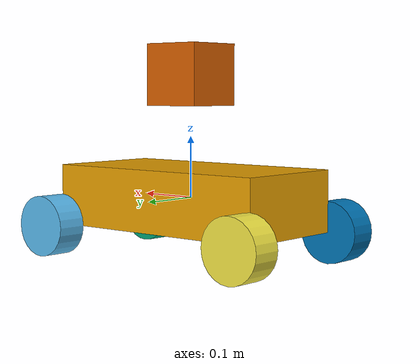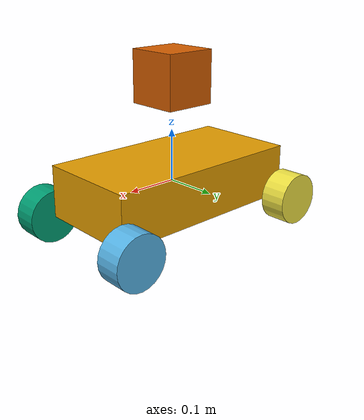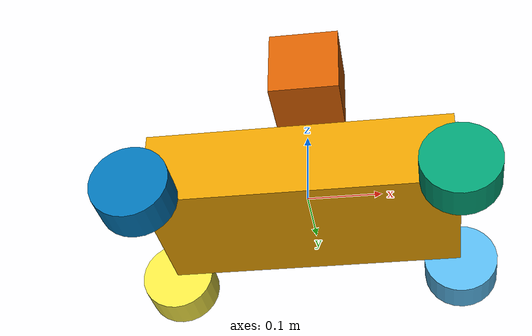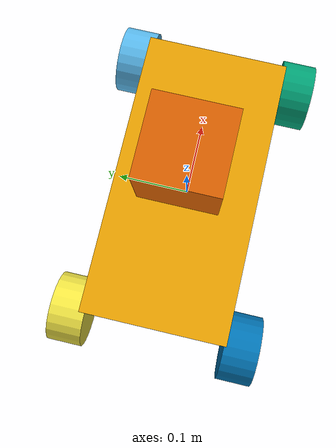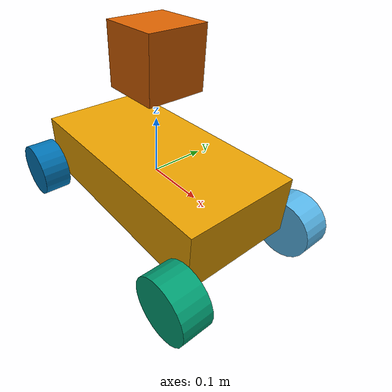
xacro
<?xml version="1.0"?>
<robot name="OMNIFEATTER" xmlns:xacro="http://ros.org/wiki/xacro">

  <!-- ****************** ROBOT CONSTANTS *********************  -->

  <!-- Define the size of the robot's main chassis in meters -->
  <xacro:property name="BASE_LENGHT" value="0.4" />
  <xacro:property name="BASE_HEIGHT" value="0.1" />
  <xacro:property name="BASE_WIDTH" value="0.2" />

  <!-- Size of mechanum wheels in meters-->
  <xacro:property name="MECANUM_WHEEL_DIAMETER" value="0.10" />
  <xacro:property name="MECANUM_WHEEL_WIDTH" value="0.05" />

  <!-- Limits of Mecanum Wheel joints-->
  <xacro:property name="MECANUM_WHEEL_MAX_JOINT_VEL" value="5.0" /> <!-- rad/s-->
  <xacro:property name="MECANUM_WHEEL_MAX_EFFORT" value="30" />

  <!-- Mecanum Wheel mass -->
  <xacro:property name="MECANUM_WHEEL_MASS" value="0.4" /> <!-- kg-->

  <!-- Robot mass -->
  <xacro:property name="ROBOT_MASS" value="2" /> <!-- kg-->

  <!-- ********** ROBOT CONSTANTS (NO NEED TO CHANGE) **********  -->

  <!-- Placement of Mecanum Wheel wheels-->
  <xacro:property name="BACK_WHEEL" value="-1" />
  <xacro:property name="FRONT_WHEEL" value="1" />
  <xacro:property name="LEFT_WHEEL" value="1" />
  <xacro:property name="RIGHT_WHEEL" value="-1" />

  <!-- ****************** MACROS ******************************  -->

  <!-- *********************** BASE LINK **********************  -->

  <xacro:include filename="$(find omni_featter_description)/urdf/base.urdf.xacro" />

  <!-- ******************** MECANUM WHEELS ********************  -->

  <xacro:include filename="$(find omni_featter_description)/urdf/wheels_urdf/mecanum_wheels_macro.urdf.xacro" />

  <!-- ******************* IMU LINK *******************  -->

  <xacro:include filename="$(find omni_featter_description)/urdf/sensors/imu_.urdf.xacro" />

  <!-- ****************** ASSEMBLY ****************************  -->

  <!-- ********************** BASE LINK ***********************  -->

  <xacro:Base_link
  ROBOT_MASS="${ROBOT_MASS}"
  MECANUM_WHEEL_MASS="${MECANUM_WHEEL_MASS}"
  BASE_LENGHT="${BASE_LENGHT}"
  BASE_WIDTH="${BASE_WIDTH}"
  BASE_HEIGHT="${BASE_HEIGHT}"/>

  <!-- ****************** LEFT FRONT WHEEL *******************************  -->

  <xacro:Mecanum_Wheel
  PREFIX="L_F_WHEEL"
  WIDTH="${MECANUM_WHEEL_WIDTH}"
  DIAMETER="${MECANUM_WHEEL_DIAMETER}"
  MECANUM_WHEEL_MAX_JOINT_VEL="${MECANUM_WHEEL_MAX_JOINT_VEL}"
  MECANUM_WHEEL_MAX_EFFORT="${MECANUM_WHEEL_MAX_EFFORT}"
  FR_BA="${FRONT_WHEEL}"
  LE_RI="${LEFT_WHEEL}"
  BASE_LENGHT="${BASE_LENGHT}"
  BASE_WIDTH="${BASE_WIDTH}"
  BASE_HEIGHT="${BASE_HEIGHT}"
  MECANUM_WHEEL_WIDTH="${MECANUM_WHEEL_WIDTH}"
  BASE_LINK="BASE_LINK"
  WHEEL_MASS="${MECANUM_WHEEL_MASS}"/>

  <!-- ****************** RIGHT FRONT WHEEL *******************************  -->

  <xacro:Mecanum_Wheel
  PREFIX="R_F_WHEEL"
  WIDTH="${MECANUM_WHEEL_WIDTH}"
  DIAMETER="${MECANUM_WHEEL_DIAMETER}"
  MECANUM_WHEEL_MAX_JOINT_VEL="${MECANUM_WHEEL_MAX_JOINT_VEL}"
  MECANUM_WHEEL_MAX_EFFORT="${MECANUM_WHEEL_MAX_EFFORT}"
  FR_BA="${FRONT_WHEEL}" LE_RI="${RIGHT_WHEEL}"
  BASE_LENGHT="${BASE_LENGHT}"
  BASE_WIDTH="${BASE_WIDTH}"
  BASE_HEIGHT="${BASE_HEIGHT}"
  MECANUM_WHEEL_WIDTH="${MECANUM_WHEEL_WIDTH}"
  BASE_LINK="BASE_LINK"
  WHEEL_MASS="${MECANUM_WHEEL_MASS}"/>

  <!-- ****************** LEFT BACK WHEEL *******************************  -->

  <xacro:Mecanum_Wheel
  PREFIX="L_B_WHEEL"
  WIDTH="${MECANUM_WHEEL_WIDTH}"
  DIAMETER="${MECANUM_WHEEL_DIAMETER}"
  MECANUM_WHEEL_MAX_JOINT_VEL="${MECANUM_WHEEL_MAX_JOINT_VEL}"
  MECANUM_WHEEL_MAX_EFFORT="${MECANUM_WHEEL_MAX_EFFORT}"
  FR_BA="${BACK_WHEEL}"
  LE_RI="${LEFT_WHEEL}"
  BASE_LENGHT="${BASE_LENGHT}"
  BASE_WIDTH="${BASE_WIDTH}"
  BASE_HEIGHT="${BASE_HEIGHT}"
  MECANUM_WHEEL_WIDTH="${MECANUM_WHEEL_WIDTH}"
  BASE_LINK="BASE_LINK"
  WHEEL_MASS="${MECANUM_WHEEL_MASS}"/>

  <!-- ****************** RIGHT BACK WHEEL *******************************  -->

  <xacro:Mecanum_Wheel
  PREFIX="R_B_WHEEL"
  WIDTH="${MECANUM_WHEEL_WIDTH}"
  DIAMETER="${MECANUM_WHEEL_DIAMETER}"
  MECANUM_WHEEL_MAX_JOINT_VEL="${MECANUM_WHEEL_MAX_JOINT_VEL}"
  MECANUM_WHEEL_MAX_EFFORT="${MECANUM_WHEEL_MAX_EFFORT}"
  FR_BA="${BACK_WHEEL}" LE_RI="${RIGHT_WHEEL}"
  BASE_LENGHT="${BASE_LENGHT}"
  BASE_WIDTH="${BASE_WIDTH}"
  BASE_HEIGHT="${BASE_HEIGHT}"
  MECANUM_WHEEL_WIDTH="${MECANUM_WHEEL_WIDTH}"
  BASE_LINK="BASE_LINK"
  WHEEL_MASS="${MECANUM_WHEEL_MASS}"/>

  <!-- ****************** IMU LINK *******************************  -->

  <xacro:Imu_link/>

</robot>

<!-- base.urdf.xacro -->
<robot xmlns:xacro="http://ros.org/wiki/xacro">
  <xacro:macro name="Base_link" params="ROBOT_MASS MECANUM_WHEEL_MASS BASE_LENGHT BASE_WIDTH BASE_HEIGHT">

    <!-- ****************** MACROS ******************************  -->

    <!-- ******************* INERTIAL MACROS  *******************  -->

    <xacro:include filename="$(find omni_featter_description)/urdf/basic_macros/inertial_macros.urdf.xacro" />

    <!-- *************** MECANUM WHEEL DEFINITION ***************  -->

    <link name="BASE_LINK">

      <visual>
        <geometry>
          <box size="${BASE_LENGHT} ${BASE_WIDTH} ${BASE_HEIGHT}" />
        </geometry>
      </visual>

      <collision>
        <geometry>
          <box size="${BASE_LENGHT} ${BASE_WIDTH} ${BASE_HEIGHT}" />
        </geometry>
      </collision>

      <inertial>
        <origin xyz="0 0 0" rpy="0 0 0" />
        <mass value="${ROBOT_MASS-MECANUM_WHEEL_MASS}" />
        <xacro:box_inertia m="${ROBOT_MASS-MECANUM_WHEEL_MASS}" x="${BASE_LENGHT}" y="${BASE_WIDTH}" z="${BASE_HEIGHT}" />
      </inertial>
    </link>

  </xacro:macro>
</robot>

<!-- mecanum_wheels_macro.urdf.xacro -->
<robot xmlns:xacro="http://ros.org/wiki/xacro">
  <xacro:macro name="Mecanum_Wheel" params="PREFIX WIDTH DIAMETER MECANUM_WHEEL_MAX_JOINT_VEL
    MECANUM_WHEEL_MAX_EFFORT FR_BA LE_RI BASE_LENGHT
    BASE_WIDTH BASE_HEIGHT MECANUM_WHEEL_WIDTH BASE_LINK WHEEL_MASS">

    <!-- ****************** MACROS ******************************  -->

    <!-- ******************* INERTIAL MACROS  *******************  -->

    <xacro:include filename="$(find omni_featter_description)/urdf/basic_macros/inertial_macros.urdf.xacro" />

    <!-- *************** MECANUM WHEEL DEFINITION ***************  -->

    <link name="${PREFIX}">

      <visual>
        <geometry>
          <cylinder radius="${DIAMETER/2}" length="${WIDTH}" />
        </geometry>
      </visual>

      <collision>
        <geometry>
          <cylinder radius="${DIAMETER/2}" length="${WIDTH}" />
        </geometry>
      </collision>

      <inertial>
        <origin xyz="0 0 0" rpy="0 0 0" />
        <mass value="${WHEEL_MASS}" />
        <xacro:cylinder_inertia m="${MECANUM_WHEEL_MASS}" h="${MECANUM_WHEEL_WIDTH}" r="${DIAMETER/2}"/>
      </inertial>
    </link>

    <joint name="base_to_${PREFIX}_joint" type="continuous">
      <parent link="${BASE_LINK}" />
      <child link="${PREFIX}" />
      <origin xyz="${FR_BA*BASE_LENGHT/2} ${LE_RI*(BASE_WIDTH/2+MECANUM_WHEEL_WIDTH/2)} -${BASE_HEIGHT/2}" rpy="${LE_RI*pi/2} 0 0" />
      <limit effort="${MECANUM_WHEEL_MAX_EFFORT}" velocity="${MECANUM_WHEEL_MAX_JOINT_VEL}" />
      <axis xyz="0 0 1" />
    </joint>

  </xacro:macro>
</robot>

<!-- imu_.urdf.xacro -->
<robot xmlns:xacro="http://ros.org/wiki/xacro">
    <xacro:macro name="Imu_link" params="">

        <link name="IMU_LINK">
            <visual>
                <geometry>
                    <box size="0.1 0.1 0.1" />
                </geometry>
            </visual>

            <collision>
                <geometry>
                    <box size="0.1 0.1 0.1" />
                </geometry>
            </collision>

            <xacro:box_inertia m="0.1" w="0.1" d="0.1" h="0.1" />
        </link>

        <joint name="imu_joint" type="fixed">
            <parent link="BASE_LINK" />
            <child link="IMU_LINK" />
            <origin xyz="0 0 0.2" />
        </joint>

        <gazebo reference="IMU_LINK">
            <sensor name="imu_sensor" type="imu">
                <plugin filename="libgazebo_ros_imu_sensor.so" name="imu_plugin">
                    <ros>
                        <namespace>/omni_featter</namespace>
                        <remapping>~/out:=imu</remapping>
                    </ros>
                    <initial_orientation_as_reference>false</initial_orientation_as_reference>
                </plugin>
                <always_on>true</always_on>
                <update_rate>100</update_rate>
                <visualize>true</visualize>
                <imu>
                    <angular_velocity>
                        <x>
                            <noise type="gaussian">
                                <mean>0.0</mean>
                                <stddev>2e-4</stddev>
                                <bias_mean>0.0000075</bias_mean>
                                <bias_stddev>0.0000008</bias_stddev>
                            </noise>
                        </x>
                        <y>
                            <noise type="gaussian">
                                <mean>0.0</mean>
                                <stddev>2e-4</stddev>
                                <bias_mean>0.0000075</bias_mean>
                                <bias_stddev>0.0000008</bias_stddev>
                            </noise>
                        </y>
                        <z>
                            <noise type="gaussian">
                                <mean>0.0</mean>
                                <stddev>2e-4</stddev>
                                <bias_mean>0.0000075</bias_mean>
                                <bias_stddev>0.0000008</bias_stddev>
                            </noise>
                        </z>
                    </angular_velocity>
                    <linear_acceleration>
                        <x>
                            <noise type="gaussian">
                                <mean>0.0</mean>
                                <stddev>1.7e-2</stddev>
                                <bias_mean>0.1</bias_mean>
                                <bias_stddev>0.001</bias_stddev>
                            </noise>
                        </x>
                        <y>
                            <noise type="gaussian">
                                <mean>0.0</mean>
                                <stddev>1.7e-2</stddev>
                                <bias_mean>0.1</bias_mean>
                                <bias_stddev>0.001</bias_stddev>
                            </noise>
                        </y>
                        <z>
                            <noise type="gaussian">
                                <mean>0.0</mean>
                                <stddev>1.7e-2</stddev>
                                <bias_mean>0.1</bias_mean>
                                <bias_stddev>0.001</bias_stddev>
                            </noise>
                        </z>
                    </linear_acceleration>
                </imu>
            </sensor>
        </gazebo>

    </xacro:macro>
</robot>

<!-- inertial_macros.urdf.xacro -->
<robot xmlns:xacro="http://ros.org/wiki/xacro">

    <xacro:macro name="sphere_inertia" params="m r">
        <inertia ixx="${2*m*r*r/5}" ixy="0" ixz="0" iyy="${2*m*r*r/5}" iyz="0" izz="${2*m*r*r/5}" />
    </xacro:macro>

    <xacro:macro name="box_inertia" params="m x y z">
        <inertia ixx="${m*(y*y+z*z)/12}" ixy="0" ixz="0" iyy="${m*(x*x+z*z)/12}" iyz="0" izz="${m*(x*x+z*z)/12}" />
    </xacro:macro>

    <xacro:macro name="cylinder_inertia" params="m r h">
        <inertia ixx="${m*(3*r*r+h*h)/12}" ixy="0" ixz="0" iyy="${m*(3*r*r+h*h)/12}" iyz="0" izz="${m*r*r/2}" />
    </xacro:macro>

</robot>
